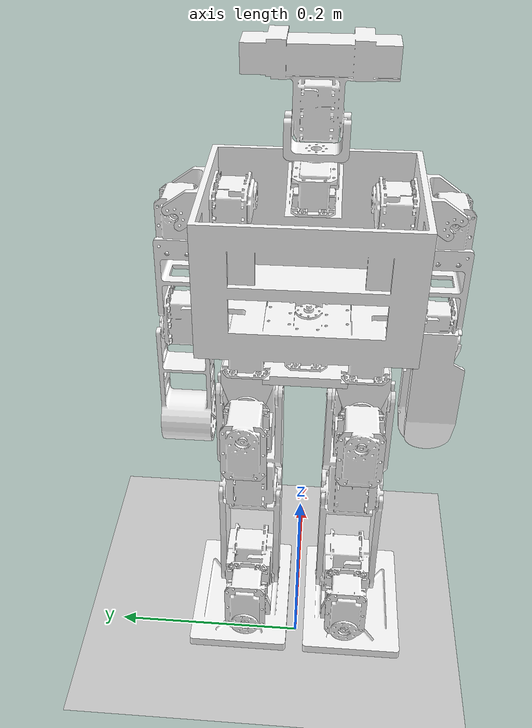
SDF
<?xml version="1.0" ?>
<sdf version="1.6">
  <world name="src_whole_world">
		<physics name="default_physics" default="0" type="ode">
		 <max_step_size>0.001</max_step_size> //최대 1ms로 계산 가능
		 <real_time_factor>1</real_time_factor> //실시간과 비슷 ex)0.5>0.5배속
		 <real_time_update_rate>1000</real_time_update_rate> //1초안에 1000번 계산, 1000hz
		 <ode> //open dynamic engine을 사용하는 물리환경

 		 <friction>
   		 <mu>0.5</mu>       <!-- 기본 마찰 계수 -->
    		 <mu2>0.1</mu2>     <!-- 추가 마찰 계수 -->
   		 <fdir1>1 0 0</fdir1> <!-- 마찰 방향 (선택 사항) -->
  		 </friction>

			<solver>
			 <type>quick</type>
			 <iters>100</iters>
			 <sor>1.0</sor>
			 <use_dynamic_moi_rescaling>false</use_dynamic_moi_rescaling>
			</solver>
		 </ode>
	</physics>

	<include>
	 <uri>model://ground_plane</uri>
	</include>

	<include>
	 <uri>model://sun</uri>
	</include>

	<include>
	 <uri>model://src_whole</uri>
	 <pose frame=''>0 0 0.465 0 0 0</pose> //x,y,z,roll,pitch,yaw
	       <plugin name="src_whole_plugin.cc" filename="libsrc_whole_pkgs.so"/>
	</include>
 </world>
</sdf>

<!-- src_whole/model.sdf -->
<sdf version='1.7'>
  <model name='src_whole'>
    <link name='base_link'>
      <inertial>
        <pose>-0.00166 -4e-06 -0.004178 0 -0 0</pose>
        <mass>0.75139</mass>
        <inertia>
          <ixx>0.0010428</ixx>
          <ixy>-5.7481e-07</ixy>
          <ixz>1.2257e-05</ixz>
          <iyy>0.00092792</iyy>
          <iyz>1.0592e-07</iyz>
          <izz>0.0012549</izz>
        </inertia>
      </inertial>
      <collision name='base_link_collision'>
        <pose>0 0 0 0 -0 0</pose>
        <geometry>
          <mesh>
            <scale>1 1 1</scale>
            <uri>model://src_whole/meshes/base_link.STL</uri>
          </mesh>
        </geometry>
      </collision>
      <visual name='base_link_visual'>
        <pose>0 0 0 0 -0 0</pose>
        <geometry>
          <mesh>
            <scale>1 1 1</scale>
            <uri>model://src_whole/meshes/base_link.STL</uri>
          </mesh>
        </geometry>

        <material>
        <ambient>0 0 0 1</ambient>
        <diffuse>1 1 1 1</diffuse>
        <emissive>0 0 0 1</emissive>
        <specular>0 0 0 0</specular>
        </material>

      </visual>

      <sensor name='IMU' type="imu">
    	<pose relative_to='base_link'>-0 -0 0 0 -0 0</pose>
    	<imu>
    	<angular_velocity>
    		<x> <noise type='none'> </noise> </x>
    		<y> <noise type='none'> </noise> </y>
    		<z> <noise type='none'> </noise> </z>
    	</angular_velocity>

    	<linear_acceleration>
    		<x> <noise type='none'> </noise> </x>
    		<y> <noise type='none'> </noise> </y>
    		<z> <noise type='none'> </noise> </z>
    	</linear_acceleration>
    	</imu>
    	<always_on>1</always_on>
    	<update_rate>1000</update_rate>
    	<visualize>true</visualize>
    	</sensor>

      <sensor type="camera" name="camera1">
      <pose relative_to='base_link'>-0 -0 0.1 0 -0 0</pose>

          <update_rate>30.0</update_rate>

          <camera name="head">
            <horizontal_fov>1.3962634</horizontal_fov>
            <image>
              <width>1920</width>
              <height>1080</height>
              <format>R8G8B8</format>
            </image>
            <clip>
              <near>0.02</near>
              <far>300</far>
            </clip>
            <noise>
              <type>gaussian</type>

              <mean>0.0</mean>
              <stddev>0.007</stddev>
            </noise>
          </camera>

          <plugin name="camera_controller" filename="libgazebo_ros_camera.so">
            <alwaysOn>true</alwaysOn>
            <updateRate>0.0</updateRate>
            <cameraName>kubot_cam</cameraName>
            <imageTopicName>image_raw</imageTopicName>
            <cameraInfoTopicName>camera_info</cameraInfoTopicName>
            <frameName>camera_link</frameName>
            <hackBaseline>0.07</hackBaseline>
            <distortionK1>0.0</distortionK1>
            <distortionK2>0.0</distortionK2>
            <distortionK3>0.0</distortionK3>
            <distortionT1>0.0</distortionT1>
            <distortionT2>0.0</distortionT2>
          </plugin>
        </sensor>

    </link>
    <joint name='LP' type='revolute'>
      <pose relative_to='base_link'>-0.008588 0.050058 -0.11568 0 -0 0</pose>
      <parent>base_link</parent>
      <child>LP_Link</child>
      <axis>
        <xyz>0 0 1</xyz>
        <limit>
          <lower>0</lower>
          <upper>0</upper>
          <effort>0</effort>
          <velocity>0</velocity>
        </limit>
        <dynamics>
          <spring_reference>0</spring_reference>
          <spring_stiffness>0</spring_stiffness>
        </dynamics>
      </axis>
    </joint>
    <link name='LP_Link'>
      <pose relative_to='LP'>0 0 0 0 -0 0</pose>
      <inertial>
        <pose>0.003884 -0 0.027759 0 -0 0</pose>
        <mass>0.032185</mass>
        <inertia>
          <ixx>8.1509e-06</ixx>
          <ixy>-3.4128e-22</ixy>
          <ixz>2.5914e-09</ixz>
          <iyy>6.7466e-06</iyy>
          <iyz>2.4212e-11</iyz>
          <izz>9.2429e-06</izz>
        </inertia>
      </inertial>
      <collision name='LP_Link_collision'>
        <pose>0 0 0 0 -0 0</pose>
        <geometry>
          <mesh>
            <scale>1 1 1</scale>
            <uri>model://src_whole/meshes/LP_Link.STL</uri>
          </mesh>
        </geometry>
      </collision>
      <visual name='LP_Link_visual'>
        <pose>0 0 0 0 -0 0</pose>
        <geometry>
          <mesh>
            <scale>1 1 1</scale>
            <uri>model://src_whole/meshes/LP_Link.STL</uri>
          </mesh>
        </geometry>

        <material>
        <ambient>0 0 0 1</ambient>
        <diffuse>1 1 1 1</diffuse>
        <emissive>0 0 0 1</emissive>
        <specular>0 0 0 0</specular>
        </material>

      </visual>
    </link>
    <joint name='LPm' type='revolute'>
      <pose relative_to='LP_Link'>0 0 0 0 -0 0</pose>
      <parent>LP_Link</parent>
      <child>LPm_Link</child>
      <axis>
        <xyz>-1 0 0</xyz>
        <limit>
          <lower>0</lower>
          <upper>0</upper>
          <effort>0</effort>
          <velocity>0</velocity>
        </limit>
        <dynamics>
          <spring_reference>0</spring_reference>
          <spring_stiffness>0</spring_stiffness>
        </dynamics>
      </axis>
    </joint>
    <link name='LPm_Link'>
      <pose relative_to='LPm'>0 0 0 0 -0 0</pose>
      <inertial>
        <pose>-0.019927 2.6e-05 -0.014808 0 -0 0</pose>
        <mass>0.186247</mass>
        <inertia>
          <ixx>7.32062e-05</ixx>
          <ixy>2.13049e-09</ixy>
          <ixz>-8.42502e-07</ixz>
          <iyy>6.58557e-05</iyy>
          <iyz>3.60642e-07</iyz>
          <izz>4.46475e-05</izz>
        </inertia>
      </inertial>
      <collision name='LPm_Link_collision'>
        <pose>0 0 0 0 -0 0</pose>
        <geometry>
          <mesh>
            <scale>1 1 1</scale>
            <uri>model://src_whole/meshes/LPm_Link.STL</uri>
          </mesh>
        </geometry>
      </collision>
      <visual name='LPm_Link_visual'>
        <pose>0 0 0 0 -0 0</pose>
        <geometry>
          <mesh>
            <scale>1 1 1</scale>
            <uri>model://src_whole/meshes/LPm_Link.STL</uri>
          </mesh>
        </geometry>

        <material>
        <ambient>0 0 0 1</ambient>
        <diffuse>1 1 1 1</diffuse>
        <emissive>0 0 0 1</emissive>
        <specular>0 0 0 0</specular>
        </material>

      </visual>
    </link>
    <joint name='LPd' type='revolute'>
      <pose relative_to='LPm_Link'>0 0 0 0 -0 0</pose>
      <parent>LPm_Link</parent>
      <child>LPd_Link</child>
      <axis>
        <xyz>0 -1 0</xyz>
        <limit>
          <lower>0</lower>
          <upper>0</upper>
          <effort>0</effort>
          <velocity>0</velocity>
        </limit>
        <dynamics>
          <spring_reference>0</spring_reference>
          <spring_stiffness>0</spring_stiffness>
        </dynamics>
      </axis>
    </joint>
    <link name='LPd_Link'>
      <pose relative_to='LPd'>0 0 0 0 -0 0</pose>
      <inertial>
        <pose>0.005229 -3.2e-05 -0.087344 0 -0 0</pose>
        <mass>0.155158</mass>
        <inertia>
          <ixx>8.67547e-05</ixx>
          <ixy>-2.14541e-09</ixy>
          <ixz>6.57999e-06</ixz>
          <iyy>7.92367e-05</iyy>
          <iyz>3.60637e-07</iyz>
          <izz>3.77122e-05</izz>
        </inertia>
      </inertial>
      <collision name='LPd_Link_collision'>
        <pose>0 0 0 0 -0 0</pose>
        <geometry>
          <mesh>
            <scale>1 1 1</scale>
            <uri>model://src_whole/meshes/LPd_Link.STL</uri>
          </mesh>
        </geometry>
      </collision>
      <visual name='LPd_Link_visual'>
        <pose>0 0 0 0 -0 0</pose>
        <geometry>
          <mesh>
            <scale>1 1 1</scale>
            <uri>model://src_whole/meshes/LPd_Link.STL</uri>
          </mesh>
        </geometry>

        <material>
        <ambient>0 0 0 1</ambient>
        <diffuse>1 1 1 1</diffuse>
        <emissive>0 0 0 1</emissive>
        <specular>0 0 0 0</specular>
        </material>

      </visual>
    </link>
    <joint name='LK' type='revolute'>
      <pose relative_to='LPd_Link'>0.0008 0 -0.12 0 -0 0</pose>
      <parent>LPd_Link</parent>
      <child>LK_Link</child>
      <axis>
        <xyz>0 -1 0</xyz>
        <limit>
          <lower>0</lower>
          <upper>0</upper>
          <effort>0</effort>
          <velocity>0</velocity>
        </limit>
        <dynamics>
          <spring_reference>0</spring_reference>
          <spring_stiffness>0</spring_stiffness>
        </dynamics>
      </axis>
    </joint>
    <link name='LK_Link'>
      <pose relative_to='LK'>0 0 0 0 -0 0</pose>
      <inertial>
        <pose>0.011128 0 -0.046701 0 -0 0</pose>
        <mass>0.0766833</mass>
        <inertia>
          <ixx>8.13835e-05</ixx>
          <ixy>-5.37539e-13</ixy>
          <ixz>-6.82632e-06</ixz>
          <iyy>8.60267e-05</iyy>
          <iyz>-1.57628e-12</iyz>
          <izz>1.26229e-05</izz>
        </inertia>
      </inertial>
      <collision name='LK_Link_collision'>
        <pose>0 0 0 0 -0 0</pose>
        <geometry>
          <mesh>
            <scale>1 1 1</scale>
            <uri>model://src_whole/meshes/LK_Link.STL</uri>
          </mesh>
        </geometry>
      </collision>
      <visual name='LK_Link_visual'>
        <pose>0 0 0 0 -0 0</pose>
        <geometry>
          <mesh>
            <scale>1 1 1</scale>
            <uri>model://src_whole/meshes/LK_Link.STL</uri>
          </mesh>
        </geometry>

        <material>
        <ambient>0 0 0 1</ambient>
        <diffuse>1 1 1 1</diffuse>
        <emissive>0 0 0 1</emissive>
        <specular>0 0 0 0</specular>
        </material>

      </visual>
    </link>
    <joint name='LAP' type='revolute'>
      <pose relative_to='LK_Link'>-0.000796 0 -0.12 0 -0 0</pose>
      <parent>LK_Link</parent>
      <child>LAP_Link</child>
      <axis>
        <xyz>0 -1 0</xyz>
        <limit>
          <lower>0</lower>
          <upper>0</upper>
          <effort>0</effort>
          <velocity>0</velocity>
        </limit>
        <dynamics>
          <spring_reference>0</spring_reference>
          <spring_stiffness>0</spring_stiffness>
        </dynamics>
      </axis>
    </joint>
    <link name='LAP_Link'>
      <pose relative_to='LAP'>0 0 0 0 -0 0</pose>
      <inertial>
        <pose>-0.019927 -3.5e-05 0.014808 0 -0 0</pose>
        <mass>0.186247</mass>
        <inertia>
          <ixx>7.32062e-05</ixx>
          <ixy>-2.13055e-09</ixy>
          <ixz>8.42502e-07</ixz>
          <iyy>6.58557e-05</iyy>
          <iyz>3.60642e-07</iyz>
          <izz>4.46475e-05</izz>
        </inertia>
      </inertial>
      <collision name='LAP_Link_collision'>
        <pose>0 0 0 0 -0 0</pose>
        <geometry>
          <mesh>
            <scale>1 1 1</scale>
            <uri>model://src_whole/meshes/LAP_Link.STL</uri>
          </mesh>
        </geometry>
      </collision>
      <visual name='LAP_Link_visual'>
        <pose>0 0 0 0 -0 0</pose>
        <geometry>
          <mesh>
            <scale>1 1 1</scale>
            <uri>model://src_whole/meshes/LAP_Link.STL</uri>
          </mesh>
        </geometry>

        <material>
        <ambient>0 0 0 1</ambient>
        <diffuse>1 1 1 1</diffuse>
        <emissive>0 0 0 1</emissive>
        <specular>0 0 0 0</specular>
        </material>

      </visual>
    </link>
    <joint name='LAR' type='revolute'>
      <pose relative_to='LAP_Link'>0 0 0 0 -0 0</pose>
      <parent>LAP_Link</parent>
      <child>LAR_Link</child>
      <axis>
        <xyz>-1 0 0</xyz>
        <limit>
          <lower>0</lower>
          <upper>0</upper>
          <effort>0</effort>
          <velocity>0</velocity>
        </limit>
        <dynamics>
          <spring_reference>0</spring_reference>
          <spring_stiffness>0</spring_stiffness>
        </dynamics>
      </axis>
    </joint>
    <link name='LAR_Link'>
      <pose relative_to='LAR'>0 0 0 0 -0 0</pose>
      <inertial>
        <pose>-0.0266 0 -0.019713 0 -0 0</pose>
        <mass>0.00840381</mass>
        <inertia>
          <ixx>2.59254e-06</ixx>
          <ixy>-2.03595e-22</ixy>
          <ixz>1.87535e-22</ixz>
          <iyy>1.39862e-06</iyy>
          <iyz>-1.2106e-11</iyz>
          <izz>1.22894e-06</izz>
        </inertia>
      </inertial>
      <collision name='LAR_Link_collision'>
        <pose>0 0 0 0 -0 0</pose>
        <geometry>
          <mesh>
            <scale>1 1 1</scale>
            <uri>model://src_whole/meshes/LAR_Link.STL</uri>
          </mesh>
        </geometry>
      </collision>
      <visual name='LAR_Link_visual'>
        <pose>0 0 0 0 -0 0</pose>
        <geometry>
          <mesh>
            <scale>1 1 1</scale>
            <uri>model://src_whole/meshes/LAR_Link.STL</uri>
          </mesh>
        </geometry>

        <material>
        <ambient>0 0 0 1</ambient>
        <diffuse>1 1 1 1</diffuse>
        <emissive>0 0 0 1</emissive>
        <specular>0 0 0 0</specular>
        </material>

      </visual>
    </link>
    <joint name='LS' type='fixed'>
      <pose relative_to='LAR_Link'>0.000796 0 -0.05 0 -0 0</pose>
      <parent>LAR_Link</parent>
      <child>LS_Link</child>
    </joint>
    <link name='LS_Link'>
      <pose relative_to='LS'>0 0 0 0 -0 0</pose>
      <inertial>
        <pose>0.004719 0.00669 0.007071 0 -0 0</pose>
        <mass>0.145083</mass>
        <inertia>
          <ixx>0.000115542</ixx>
          <ixy>3.6327e-13</ixy>
          <ixz>1.46992e-12</ixz>
          <iyy>0.000210297</iyy>
          <iyz>1.32916e-06</iyz>
          <izz>0.000318707</izz>
        </inertia>
      </inertial>
      <collision name='LS_Link_collision'>
        <pose>0 0 0 0 -0 0</pose>
        <geometry>
          <mesh>
            <scale>1 1 1</scale>
            <uri>model://src_whole/meshes/LS_Link.STL</uri>
          </mesh>
        </geometry>

        <surface>
    	<friction>
      	<ode>
        <mu>0.2</mu>
        <mu2>0.1</mu2>
      	</ode>
    	</friction>
  	</surface>

        <surface>
        <contact>
            <ode>
              <kp>10000000</kp>
              <kd>10000</kd>
              <max_vel>0.1</max_vel>
              <min_depth>0.001</min_depth>
            </ode>
          </contact>
        </surface>

      </collision>
      <visual name='LS_Link_visual'>
        <pose>0 0 0 0 -0 0</pose>
        <geometry>
          <mesh>
            <scale>1 1 1</scale>
            <uri>model://src_whole/meshes/LS_Link.STL</uri>
          </mesh>
        </geometry>

        <material>
        <ambient>0 0 0 1</ambient>
        <diffuse>1 1 1 1</diffuse>
        <emissive>0 0 0 1</emissive>
        <specular>0 0 0 0</specular>
        </material>

      </visual>
    </link>
    <joint name='LSHP' type='revolute'>
      <pose relative_to='base_link'>0.033212 0.088307 0.054616 0 -0 0</pose>
      <parent>base_link</parent>
      <child>LSHP_Link</child>
      <axis>
        <xyz>0 -1 0</xyz>
        <limit>
          <lower>0</lower>
          <upper>0</upper>
          <effort>0</effort>
          <velocity>0</velocity>
        </limit>
        <dynamics>
          <spring_reference>0</spring_reference>
          <spring_stiffness>0</spring_stiffness>
        </dynamics>
      </axis>
    </joint>
    <link name='LSHP_Link'>
      <pose relative_to='LSHP'>0 0 0 0 -0 0</pose>
      <inertial>
        <pose>-0 0.010248 -0.001638 0 -0 0</pose>
        <mass>0.0144695</mass>
        <inertia>
          <ixx>2.03926e-06</ixx>
          <ixy>-6.3955e-13</ixy>
          <ixz>8.85004e-14</ixz>
          <iyy>6.57717e-06</iyy>
          <iyz>2.36867e-07</iyz>
          <izz>6.75696e-06</izz>
        </inertia>
      </inertial>
      <collision name='LSHP_Link_collision'>
        <pose>0 0 0 0 -0 0</pose>
        <geometry>
          <mesh>
            <scale>1 1 1</scale>
            <uri>model://src_whole/meshes/LSHP_Link.STL</uri>
          </mesh>
        </geometry>
      </collision>
      <visual name='LSHP_Link_visual'>
        <pose>0 0 0 0 -0 0</pose>
        <geometry>
          <mesh>
            <scale>1 1 1</scale>
            <uri>model://src_whole/meshes/LSHP_Link.STL</uri>
          </mesh>
        </geometry>

        <material>
        <ambient>0 0 0 1</ambient>
        <diffuse>1 1 1 1</diffuse>
        <emissive>0 0 0 1</emissive>
        <specular>0 0 0 0</specular>
        </material>

      </visual>
    </link>
    <joint name='LSHR' type='revolute'>
      <pose relative_to='LSHP_Link'>0.020275 0.025656 -0.01045 0 -0 0</pose>
      <parent>LSHP_Link</parent>
      <child>LSHR_Link</child>
      <axis>
        <xyz>-1 0 0</xyz>
        <limit>
          <lower>0</lower>
          <upper>0</upper>
          <effort>0</effort>
          <velocity>0</velocity>
        </limit>
        <dynamics>
          <spring_reference>0</spring_reference>
          <spring_stiffness>0</spring_stiffness>
        </dynamics>
      </axis>
    </joint>
    <link name='LSHR_Link'>
      <pose relative_to='LSHR'>0 0 0 0 -0 0</pose>
      <inertial>
        <pose>-0.02074 1e-05 -0.061219 0 -0 0</pose>
        <mass>0.123124</mass>
        <inertia>
          <ixx>4.41336e-05</ixx>
          <ixy>1.41885e-10</ixy>
          <ixz>-1.13936e-07</ixz>
          <iyy>4.14051e-05</iyy>
          <iyz>1.08534e-07</iyz>
          <izz>2.93257e-05</izz>
        </inertia>
      </inertial>
      <collision name='LSHR_Link_collision'>
        <pose>0 0 0 0 -0 0</pose>
        <geometry>
          <mesh>
            <scale>1 1 1</scale>
            <uri>model://src_whole/meshes/LSHR_Link.STL</uri>
          </mesh>
        </geometry>
      </collision>
      <visual name='LSHR_Link_visual'>
        <pose>0 0 0 0 -0 0</pose>
        <geometry>
          <mesh>
            <scale>1 1 1</scale>
            <uri>model://src_whole/meshes/LSHR_Link.STL</uri>
          </mesh>
        </geometry>

        <material>
        <ambient>0 0 0 1</ambient>
        <diffuse>1 1 1 1</diffuse>
        <emissive>0 0 0 1</emissive>
        <specular>0 0 0 0</specular>
        </material>

      </visual>
    </link>
    <joint name='LE' type='revolute'>
      <pose relative_to='LSHR_Link'>-0.02075 0.02075 -0.1231 0 -0 0</pose>
      <parent>LSHR_Link</parent>
      <child>LE_Link</child>
      <axis>
        <xyz>0 -1 0</xyz>
        <limit>
          <lower>0</lower>
          <upper>0</upper>
          <effort>0</effort>
          <velocity>0</velocity>
        </limit>
        <dynamics>
          <spring_reference>0</spring_reference>
          <spring_stiffness>0</spring_stiffness>
        </dynamics>
      </axis>
    </joint>
    <link name='LE_Link'>
      <pose relative_to='LE'>0 0 0 0 -0 0</pose>
      <inertial>
        <pose>0 -0.020275 -0.07859 0 -0 0</pose>
        <mass>0.0479318</mass>
        <inertia>
          <ixx>7.80085e-05</ixx>
          <ixy>7.08556e-20</ixy>
          <ixz>1.5237e-19</ixz>
          <iyy>7.27678e-05</iyy>
          <iyz>1.80118e-12</iyz>
          <izz>2.17936e-05</izz>
        </inertia>
      </inertial>
      <collision name='LE_Link_collision'>
        <pose>0 0 0 0 -0 0</pose>
        <geometry>
          <mesh>
            <scale>1 1 1</scale>
            <uri>model://src_whole/meshes/LE_Link.STL</uri>
          </mesh>
        </geometry>
      </collision>
      <visual name='LE_Link_visual'>
        <pose>0 0 0 0 -0 0</pose>
        <geometry>
          <mesh>
            <scale>1 1 1</scale>
            <uri>model://src_whole/meshes/LE_Link.STL</uri>
          </mesh>
        </geometry>

        <material>
        <ambient>0 0 0 1</ambient>
        <diffuse>1 1 1 1</diffuse>
        <emissive>0 0 0 1</emissive>
        <specular>0 0 0 0</specular>
        </material>

      </visual>
    </link>
    <joint name='NY' type='revolute'>
      <pose relative_to='base_link'>0.038812 5.7e-05 0.086566 0 -0 0</pose>
      <parent>base_link</parent>
      <child>NY_Link</child>
      <axis>
        <xyz>0 0 1</xyz>
        <limit>
          <lower>0</lower>
          <upper>0</upper>
          <effort>0</effort>
          <velocity>0</velocity>
        </limit>
        <dynamics>
          <spring_reference>0</spring_reference>
          <spring_stiffness>0</spring_stiffness>
        </dynamics>
      </axis>
    </joint>
    <link name='NY_Link'>
      <pose relative_to='NY'>0 0 0 0 -0 0</pose>
      <inertial>
        <pose>-0.008461 -1e-06 -0.011176 0 -0 0</pose>
        <mass>0.0588745</mass>
        <inertia>
          <ixx>1.41764e-05</ixx>
          <ixy>1.41875e-09</ixy>
          <ixz>-1.82756e-07</ixz>
          <iyy>1.41937e-05</iyy>
          <iyz>2.61312e-12</iyz>
          <izz>1.67049e-05</izz>
        </inertia>
      </inertial>
      <collision name='NY_Link_collision'>
        <pose>0 0 0 0 -0 0</pose>
        <geometry>
          <mesh>
            <scale>1 1 1</scale>
            <uri>model://src_whole/meshes/NY_Link.STL</uri>
          </mesh>
        </geometry>
      </collision>
      <visual name='NY_Link_visual'>
        <pose>0 0 0 0 -0 0</pose>
        <geometry>
          <mesh>
            <scale>1 1 1</scale>
            <uri>model://src_whole/meshes/NY_Link.STL</uri>
          </mesh>
        </geometry>

        <material>
        <ambient>0 0 0 1</ambient>
        <diffuse>1 1 1 1</diffuse>
        <emissive>0 0 0 1</emissive>
        <specular>0 0 0 0</specular>
        </material>

      </visual>
    </link>
    <joint name='NP' type='revolute'>
      <pose relative_to='NY_Link'>0 -0.020275 0.0295 0 -0 0</pose>
      <parent>NY_Link</parent>
      <child>NP_Link</child>
      <axis>
        <xyz>0 1 0</xyz>
        <limit>
          <lower>0</lower>
          <upper>0</upper>
          <effort>0</effort>
          <velocity>0</velocity>
        </limit>
        <dynamics>
          <spring_reference>0</spring_reference>
          <spring_stiffness>0</spring_stiffness>
        </dynamics>
      </axis>
    </joint>
    <link name='NP_Link'>
      <pose relative_to='NP'>0 0 0 0 -0 0</pose>
      <inertial>
        <pose>-0.000876 0.019782 0.038502 0 -0 0</pose>
        <mass>0.140816</mass>
        <inertia>
          <ixx>0.0001309</ixx>
          <ixy>-3.21261e-07</ixy>
          <ixz>1.07462e-07</ixz>
          <iyy>2.57793e-05</iyy>
          <iyz>-5.11712e-07</iyz>
          <izz>0.000128105</izz>
        </inertia>
      </inertial>
      <collision name='NP_Link_collision'>
        <pose>0 0 0 0 -0 0</pose>
        <geometry>
          <mesh>
            <scale>1 1 1</scale>
            <uri>model://src_whole/meshes/NP_Link.STL</uri>
          </mesh>
        </geometry>
      </collision>
      <visual name='NP_Link_visual'>
        <pose>0 0 0 0 -0 0</pose>
        <geometry>
          <mesh>
            <scale>1 1 1</scale>
            <uri>model://src_whole/meshes/NP_Link.STL</uri>
          </mesh>
        </geometry>

        <material>
        <ambient>0 0 0 1</ambient>
        <diffuse>1 1 1 1</diffuse>
        <emissive>0 0 0 1</emissive>
        <specular>0 0 0 0</specular>
        </material>

      </visual>
    </link>
    <joint name='RP' type='revolute'>
      <pose relative_to='base_link'>-0.008588 -0.049942 -0.11568 0 -0 0</pose>
      <parent>base_link</parent>
      <child>RP_link</child>
      <axis>
        <xyz>0 0 1</xyz>
        <limit>
          <lower>0</lower>
          <upper>0</upper>
          <effort>0</effort>
          <velocity>0</velocity>
        </limit>
        <dynamics>
          <spring_reference>0</spring_reference>
          <spring_stiffness>0</spring_stiffness>
        </dynamics>
      </axis>
    </joint>
    <link name='RP_link'>
      <pose relative_to='RP'>0 0 0 0 -0 0</pose>
      <inertial>
        <pose>0.003884 -0 0.027759 0 -0 0</pose>
        <mass>0.032185</mass>
        <inertia>
          <ixx>8.1509e-06</ixx>
          <ixy>2.6555e-22</ixy>
          <ixz>2.5914e-09</ixz>
          <iyy>6.7466e-06</iyy>
          <iyz>2.4212e-11</iyz>
          <izz>9.2429e-06</izz>
        </inertia>
      </inertial>
      <collision name='RP_link_collision'>
        <pose>0 0 0 0 -0 0</pose>
        <geometry>
          <mesh>
            <scale>1 1 1</scale>
            <uri>model://src_whole/meshes/RP_link.STL</uri>
          </mesh>
        </geometry>
      </collision>
      <visual name='RP_link_visual'>
        <pose>0 0 0 0 -0 0</pose>
        <geometry>
          <mesh>
            <scale>1 1 1</scale>
            <uri>model://src_whole/meshes/RP_link.STL</uri>
          </mesh>
        </geometry>

        <material>
        <ambient>0 0 0 1</ambient>
        <diffuse>1 1 1 1</diffuse>
        <emissive>0 0 0 1</emissive>
        <specular>0 0 0 0</specular>
        </material>

      </visual>
    </link>
    <joint name='RPm' type='revolute'>
      <pose relative_to='RP_link'>0 0 0 0 -0 0</pose>
      <parent>RP_link</parent>
      <child>RPm_Link</child>
      <axis>
        <xyz>-1 0 0</xyz>
        <limit>
          <lower>0</lower>
          <upper>0</upper>
          <effort>0</effort>
          <velocity>0</velocity>
        </limit>
        <dynamics>
          <spring_reference>0</spring_reference>
          <spring_stiffness>0</spring_stiffness>
        </dynamics>
      </axis>
    </joint>
    <link name='RPm_Link'>
      <pose relative_to='RPm'>0 0 0 0 -0 0</pose>
      <inertial>
        <pose>-0.019927 2.6e-05 -0.014808 0 -0 0</pose>
        <mass>0.18625</mass>
        <inertia>
          <ixx>7.3206e-05</ixx>
          <ixy>2.1305e-09</ixy>
          <ixz>-8.425e-07</ixz>
          <iyy>6.5856e-05</iyy>
          <iyz>3.6064e-07</iyz>
          <izz>4.4648e-05</izz>
        </inertia>
      </inertial>
      <collision name='RPm_Link_collision'>
        <pose>0 0 0 0 -0 0</pose>
        <geometry>
          <mesh>
            <scale>1 1 1</scale>
            <uri>model://src_whole/meshes/RPm_Link.STL</uri>
          </mesh>
        </geometry>
      </collision>
      <visual name='RPm_Link_visual'>
        <pose>0 0 0 0 -0 0</pose>
        <geometry>
          <mesh>
            <scale>1 1 1</scale>
            <uri>model://src_whole/meshes/RPm_Link.STL</uri>
          </mesh>
        </geometry>

        <material>
        <ambient>0 0 0 1</ambient>
        <diffuse>1 1 1 1</diffuse>
        <emissive>0 0 0 1</emissive>
        <specular>0 0 0 0</specular>
        </material>

      </visual>
    </link>
    <joint name='RPd' type='revolute'>
      <pose relative_to='RPm_Link'>0 0 0 0 -0 0</pose>
      <parent>RPm_Link</parent>
      <child>RPd_Link</child>
      <axis>
        <xyz>0 1 0</xyz>
        <limit>
          <lower>0</lower>
          <upper>0</upper>
          <effort>0</effort>
          <velocity>0</velocity>
        </limit>
        <dynamics>
          <spring_reference>0</spring_reference>
          <spring_stiffness>0</spring_stiffness>
        </dynamics>
      </axis>
    </joint>
    <link name='RPd_Link'>
      <pose relative_to='RPd'>0 0 0 0 -0 0</pose>
      <inertial>
        <pose>0.005229 -3.2e-05 -0.087344 0 -0 0</pose>
        <mass>0.15516</mass>
        <inertia>
          <ixx>8.6755e-05</ixx>
          <ixy>-2.1454e-09</ixy>
          <ixz>6.58e-06</ixz>
          <iyy>7.9237e-05</iyy>
          <iyz>3.6064e-07</iyz>
          <izz>3.7712e-05</izz>
        </inertia>
      </inertial>
      <collision name='RPd_Link_collision'>
        <pose>0 0 0 0 -0 0</pose>
        <geometry>
          <mesh>
            <scale>1 1 1</scale>
            <uri>model://src_whole/meshes/RPd_Link.STL</uri>
          </mesh>
        </geometry>
      </collision>
      <visual name='RPd_Link_visual'>
        <pose>0 0 0 0 -0 0</pose>
        <geometry>
          <mesh>
            <scale>1 1 1</scale>
            <uri>model://src_whole/meshes/RPd_Link.STL</uri>
          </mesh>
        </geometry>

        <material>
        <ambient>0 0 0 1</ambient>
        <diffuse>1 1 1 1</diffuse>
        <emissive>0 0 0 1</emissive>
        <specular>0 0 0 0</specular>
        </material>

      </visual>
    </link>
    <joint name='RK' type='revolute'>
      <pose relative_to='RPd_Link'>0.0008 0 -0.12 0 -0 0</pose>
      <parent>RPd_Link</parent>
      <child>RK_Link</child>
      <axis>
        <xyz>0 1 0</xyz>
        <limit>
          <lower>0</lower>
          <upper>0</upper>
          <effort>0</effort>
          <velocity>0</velocity>
        </limit>
        <dynamics>
          <spring_reference>0</spring_reference>
          <spring_stiffness>0</spring_stiffness>
        </dynamics>
      </axis>
    </joint>
    <link name='RK_Link'>
      <pose relative_to='RK'>0 0 0 0 -0 0</pose>
      <inertial>
        <pose>0.011128 0 -0.046701 0 -0 0</pose>
        <mass>0.076683</mass>
        <inertia>
          <ixx>8.1384e-05</ixx>
          <ixy>-5.3754e-13</ixy>
          <ixz>-6.8263e-06</ixz>
          <iyy>8.6027e-05</iyy>
          <iyz>-1.5763e-12</iyz>
          <izz>1.2623e-05</izz>
        </inertia>
      </inertial>
      <collision name='RK_Link_collision'>
        <pose>0 0 0 0 -0 0</pose>
        <geometry>
          <mesh>
            <scale>1 1 1</scale>
            <uri>model://src_whole/meshes/RK_Link.STL</uri>
          </mesh>
        </geometry>
      </collision>
      <visual name='RK_Link_visual'>
        <pose>0 0 0 0 -0 0</pose>
        <geometry>
          <mesh>
            <scale>1 1 1</scale>
            <uri>model://src_whole/meshes/RK_Link.STL</uri>
          </mesh>
        </geometry>

        <material>
        <ambient>0 0 0 1</ambient>
        <diffuse>1 1 1 1</diffuse>
        <emissive>0 0 0 1</emissive>
        <specular>0 0 0 0</specular>
        </material>

      </visual>
    </link>
    <joint name='RAP' type='revolute'>
      <pose relative_to='RK_Link'>-0.000796 0 -0.12 0 -0 0</pose>
      <parent>RK_Link</parent>
      <child>RAP_Link</child>
      <axis>
        <xyz>0 1 0</xyz>
        <limit>
          <lower>0</lower>
          <upper>0</upper>
          <effort>0</effort>
          <velocity>0</velocity>
        </limit>
        <dynamics>
          <spring_reference>0</spring_reference>
          <spring_stiffness>0</spring_stiffness>
        </dynamics>
      </axis>
    </joint>
    <link name='RAP_Link'>
      <pose relative_to='RAP'>0 0 0 0 -0 0</pose>
      <inertial>
        <pose>-0.019927 -3.5e-05 0.014808 0 -0 0</pose>
        <mass>0.18625</mass>
        <inertia>
          <ixx>7.3206e-05</ixx>
          <ixy>-2.1306e-09</ixy>
          <ixz>8.425e-07</ixz>
          <iyy>6.5856e-05</iyy>
          <iyz>3.6064e-07</iyz>
          <izz>4.4648e-05</izz>
        </inertia>
      </inertial>
      <collision name='RAP_Link_collision'>
        <pose>0 0 0 0 -0 0</pose>
        <geometry>
          <mesh>
            <scale>1 1 1</scale>
            <uri>model://src_whole/meshes/RAP_Link.STL</uri>
          </mesh>
        </geometry>
      </collision>
      <visual name='RAP_Link_visual'>
        <pose>0 0 0 0 -0 0</pose>
        <geometry>
          <mesh>
            <scale>1 1 1</scale>
            <uri>model://src_whole/meshes/RAP_Link.STL</uri>
          </mesh>
        </geometry>

        <material>
        <ambient>0 0 0 1</ambient>
        <diffuse>1 1 1 1</diffuse>
        <emissive>0 0 0 1</emissive>
        <specular>0 0 0 0</specular>
        </material>

      </visual>
    </link>
    <joint name='RAR' type='revolute'>
      <pose relative_to='RAP_Link'>0 0 0 0 -0 0</pose>
      <parent>RAP_Link</parent>
      <child>RAR_Link</child>
      <axis>
        <xyz>-1 0 0</xyz>
        <limit>
          <lower>0</lower>
          <upper>0</upper>
          <effort>0</effort>
          <velocity>0</velocity>
        </limit>
        <dynamics>
          <spring_reference>0</spring_reference>
          <spring_stiffness>0</spring_stiffness>
        </dynamics>
      </axis>
    </joint>
    <link name='RAR_Link'>
      <pose relative_to='RAR'>0 0 0 0 -0 0</pose>
      <inertial>
        <pose>-0.0266 -0 -0.019713 0 -0 0</pose>
        <mass>0.0084038</mass>
        <inertia>
          <ixx>2.5925e-06</ixx>
          <ixy>-1.2568e-22</ixy>
          <ixz>-1.2942e-22</ixz>
          <iyy>1.3986e-06</iyy>
          <iyz>1.2106e-11</iyz>
          <izz>1.2289e-06</izz>
        </inertia>
      </inertial>
      <collision name='RAR_Link_collision'>
        <pose>0 0 0 0 -0 0</pose>
        <geometry>
          <mesh>
            <scale>1 1 1</scale>
            <uri>model://src_whole/meshes/RAR_Link.STL</uri>
          </mesh>
        </geometry>
      </collision>
      <visual name='RAR_Link_visual'>
        <pose>0 0 0 0 -0 0</pose>
        <geometry>
          <mesh>
            <scale>1 1 1</scale>
            <uri>model://src_whole/meshes/RAR_Link.STL</uri>
          </mesh>
        </geometry>

        <material>
        <ambient>0 0 0 1</ambient>
        <diffuse>1 1 1 1</diffuse>
        <emissive>0 0 0 1</emissive>
        <specular>0 0 0 0</specular>
        </material>

      </visual>
    </link>
    <joint name='RS' type='fixed'>
      <pose relative_to='RAR_Link'>0.000796 0 -0.05 0 -0 0</pose>
      <parent>RAR_Link</parent>
      <child>RS_Link</child>
    </joint>
    <link name='RS_Link'>
      <pose relative_to='RS'>0 0 0 0 -0 0</pose>
      <inertial>
        <pose>0.004719 -0.006889 0.007071 0 -0 0</pose>
        <mass>0.14508</mass>
        <inertia>
          <ixx>0.00011554</ixx>
          <ixy>3.6327e-13</ixy>
          <ixz>-1.4699e-12</ixz>
          <iyy>0.0002103</iyy>
          <iyz>-1.3291e-06</iyz>
          <izz>0.00031871</izz>
        </inertia>
      </inertial>
      <collision name='RS_Link_collision'>
        <pose>0 0 0 0 -0 0</pose>
        <geometry>
          <mesh>
            <scale>1 1 1</scale>
            <uri>model://src_whole/meshes/RS_Link.STL</uri>
          </mesh>
        </geometry>

        <surface>
    	<friction>
      	<ode>
        <mu>0.2</mu>
        <mu2>0.1</mu2>
      	</ode>
    	</friction>
  	</surface>

        <surface>
        <contact>
            <ode>
              <kp>10000000</kp>
              <kd>10000</kd>
              <max_vel>0.1</max_vel>
              <min_depth>0.001</min_depth>
            </ode>
          </contact>
        </surface>

      </collision>
      <visual name='RS_Link_visual'>
        <pose>0 0 0 0 -0 0</pose>
        <geometry>
          <mesh>
            <scale>1 1 1</scale>
            <uri>model://src_whole/meshes/RS_Link.STL</uri>
          </mesh>
        </geometry>

        <material>
        <ambient>0 0 0 1</ambient>
        <diffuse>1 1 1 1</diffuse>
        <emissive>0 0 0 1</emissive>
        <specular>0 0 0 0</specular>
        </material>

      </visual>
    </link>
    <joint name='RSHP' type='revolute'>
      <pose relative_to='base_link'>0.033212 -0.088193 0.054616 0 -0 0</pose>
      <parent>base_link</parent>
      <child>RSHP_Link</child>
      <axis>
        <xyz>0 1 0</xyz>
        <limit>
          <lower>0</lower>
          <upper>0</upper>
          <effort>0</effort>
          <velocity>0</velocity>
        </limit>
        <dynamics>
          <spring_reference>0</spring_reference>
          <spring_stiffness>0</spring_stiffness>
        </dynamics>
      </axis>
    </joint>
    <link name='RSHP_Link'>
      <pose relative_to='RSHP'>0 0 0 0 -0 0</pose>
      <inertial>
        <pose>0 -0.010248 -0.001638 0 -0 0</pose>
        <mass>0.0144695</mass>
        <inertia>
          <ixx>2.03926e-06</ixx>
          <ixy>-6.3955e-13</ixy>
          <ixz>-8.85004e-14</ixz>
          <iyy>6.57717e-06</iyy>
          <iyz>-2.36867e-07</iyz>
          <izz>6.75696e-06</izz>
        </inertia>
      </inertial>
      <collision name='RSHP_Link_collision'>
        <pose>0 0 0 0 -0 0</pose>
        <geometry>
          <mesh>
            <scale>1 1 1</scale>
            <uri>model://src_whole/meshes/RSHP_Link.STL</uri>
          </mesh>
        </geometry>
      </collision>
      <visual name='RSHP_Link_visual'>
        <pose>0 0 0 0 -0 0</pose>
        <geometry>
          <mesh>
            <scale>1 1 1</scale>
            <uri>model://src_whole/meshes/RSHP_Link.STL</uri>
          </mesh>
        </geometry>

        <material>
        <ambient>0 0 0 1</ambient>
        <diffuse>1 1 1 1</diffuse>
        <emissive>0 0 0 1</emissive>
        <specular>0 0 0 0</specular>
        </material>

      </visual>
    </link>
    <joint name='RSHR' type='revolute'>
      <pose relative_to='RSHP_Link'>0.020275 -0.025656 -0.01045 0 -0 0</pose>
      <parent>RSHP_Link</parent>
      <child>RSHR_Link</child>
      <axis>
        <xyz>-1 0 0</xyz>
        <limit>
          <lower>0</lower>
          <upper>0</upper>
          <effort>0</effort>
          <velocity>0</velocity>
        </limit>
        <dynamics>
          <spring_reference>0</spring_reference>
          <spring_stiffness>0</spring_stiffness>
        </dynamics>
      </axis>
    </joint>
    <link name='RSHR_Link'>
      <pose relative_to='RSHR'>0 0 0 0 -0 0</pose>
      <inertial>
        <pose>-0.023345 -0.000684 -0.079178 0 -0 0</pose>
        <mass>0.146207</mass>
        <inertia>
          <ixx>8.16862e-05</ixx>
          <ixy>4.88216e-08</ixy>
          <ixz>1.7667e-06</ixz>
          <iyy>7.43475e-05</iyy>
          <iyz>-1.52348e-06</iyz>
          <izz>3.46705e-05</izz>
        </inertia>
      </inertial>
      <collision name='RSHR_Link_collision'>
        <pose>0 0 0 0 -0 0</pose>
        <geometry>
          <mesh>
            <scale>1 1 1</scale>
            <uri>model://src_whole/meshes/RSHR_Link.STL</uri>
          </mesh>
        </geometry>
      </collision>
      <visual name='RSHR_Link_visual'>
        <pose>0 0 0 0 -0 0</pose>
        <geometry>
          <mesh>
            <scale>1 1 1</scale>
            <uri>model://src_whole/meshes/RSHR_Link.STL</uri>
          </mesh>
        </geometry>

        <material>
        <ambient>0 0 0 1</ambient>
        <diffuse>1 1 1 1</diffuse>
        <emissive>0 0 0 1</emissive>
        <specular>0 0 0 0</specular>
        </material>

      </visual>
    </link>
    <joint name='RE' type='revolute'>
      <pose relative_to='RSHR_Link'>-0.02075 -0.02075 -0.1231 0 -0 0</pose>
      <parent>RSHR_Link</parent>
      <child>RE_Link</child>
      <axis>
        <xyz>0 1 0</xyz>
        <limit>
          <lower>0</lower>
          <upper>0</upper>
          <effort>0</effort>
          <velocity>0</velocity>
        </limit>
        <dynamics>
          <spring_reference>0</spring_reference>
          <spring_stiffness>0</spring_stiffness>
        </dynamics>
      </axis>
    </joint>
    <link name='RE_Link'>
      <pose relative_to='RE'>0 0 0 0 -0 0</pose>
      <inertial>
        <pose>0.011514 0.020275 -0.054007 0 -0 0</pose>
        <mass>0.0259695</mass>
        <inertia>
          <ixx>3.68213e-05</ixx>
          <ixy>4.73793e-20</ixy>
          <ixz>7.15914e-07</ixz>
          <iyy>3.12347e-05</iyy>
          <iyz>1.72747e-20</iyz>
          <izz>6.7595e-06</izz>
        </inertia>
      </inertial>
      <collision name='RE_Link_collision'>
        <pose>0 0 0 0 -0 0</pose>
        <geometry>
          <mesh>
            <scale>1 1 1</scale>
            <uri>model://src_whole/meshes/RE_Link.STL</uri>
          </mesh>
        </geometry>
      </collision>
      <visual name='RE_Link_visual'>
        <pose>0 0 0 0 -0 0</pose>
        <geometry>
          <mesh>
            <scale>1 1 1</scale>
            <uri>model://src_whole/meshes/RE_Link.STL</uri>
          </mesh>
        </geometry>

        <material>
        <ambient>0 0 0 1</ambient>
        <diffuse>1 1 1 1</diffuse>
        <emissive>0 0 0 1</emissive>
        <specular>0 0 0 0</specular>
        </material>

      </visual>
    </link>
  </model>
</sdf>
